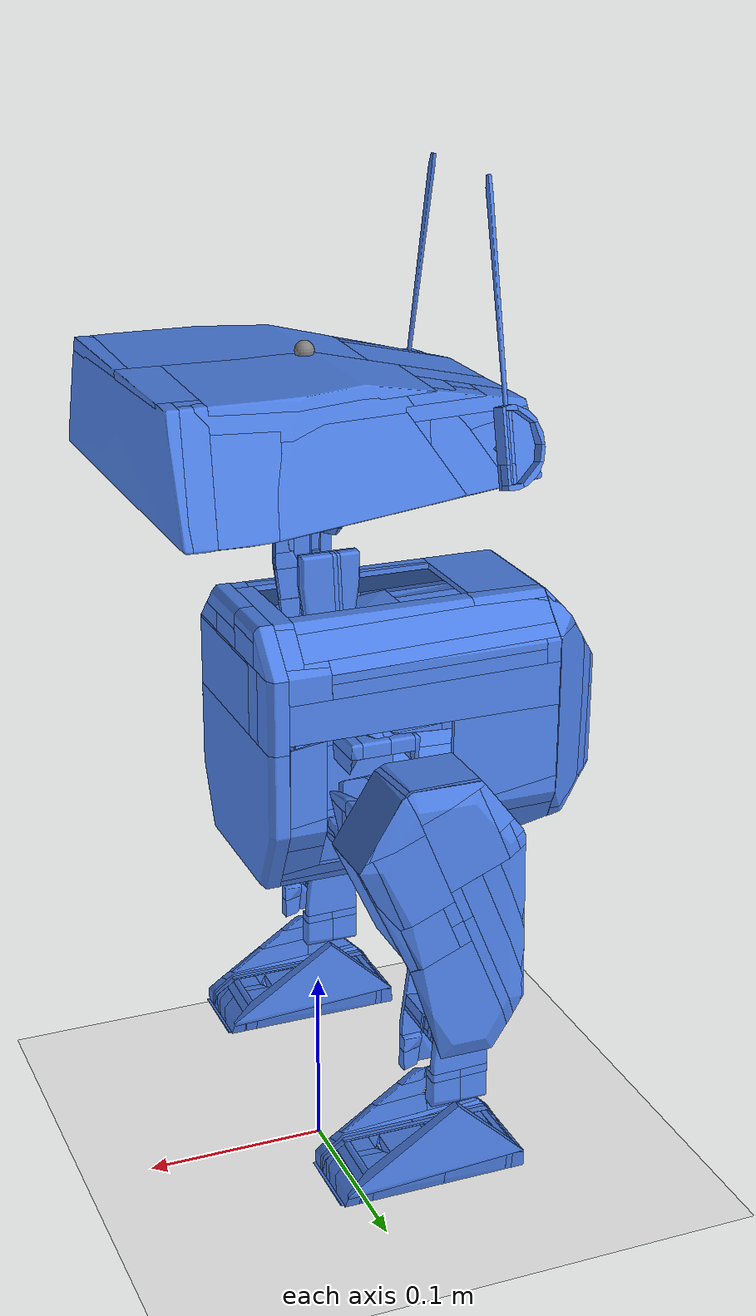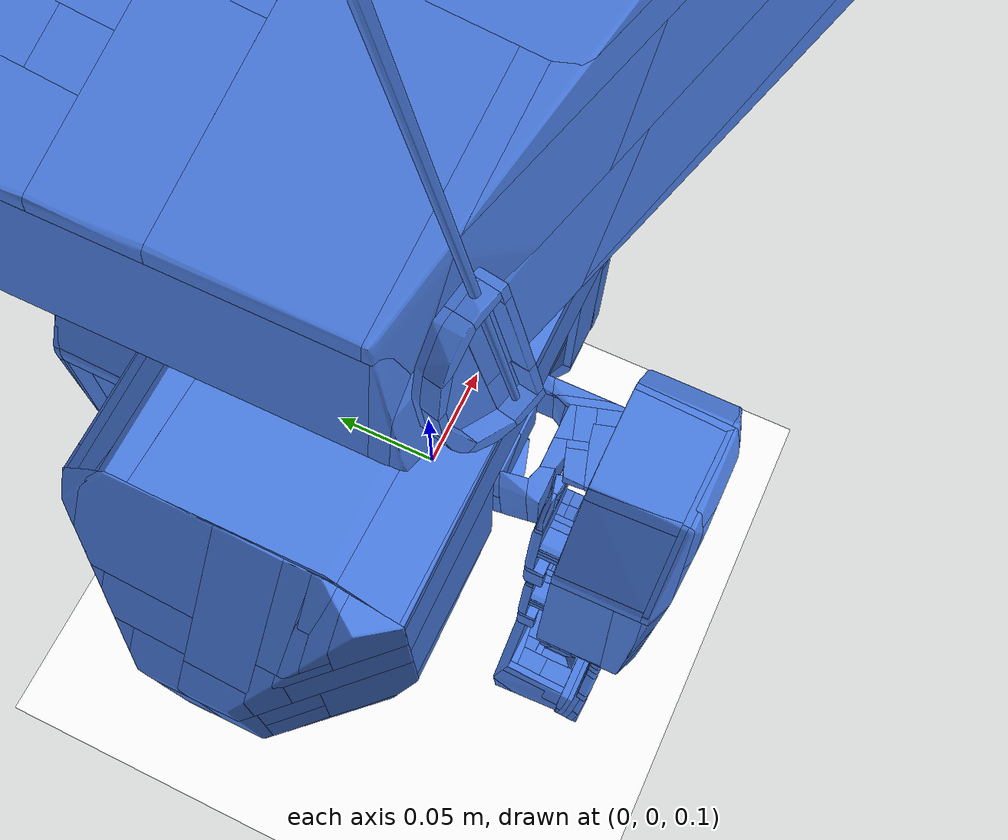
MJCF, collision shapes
<?xml version='1.0' encoding='utf-8'?>
<mujoco model="scene">
  <include file="/data/shijinsheng/open_duck/training/getup_decomposed_r4/model/robot_decomposed.xml" />
  <visual>
    <headlight diffuse="0.6 0.6 0.6" ambient="0.3 0.3 0.3" specular="0 0 0" />
    <rgba haze="0.15 0.25 0.35 1" />
    <global azimuth="160" elevation="-20" />
  </visual>
  <asset>
    <texture type="skybox" builtin="gradient" rgb1="1 1 1" rgb2="1 1 1" width="800" height="800" />
    <texture type="2d" name="groundplane" builtin="checker" mark="edge" rgb1="1 1 1" rgb2="1 1 1" markrgb="0 0 0" width="300" height="300" />
    <material name="groundplane" texture="groundplane" texuniform="true" texrepeat="5 5" reflectance="0" />
  </asset>
  <worldbody>
    <body name="floor">
      <geom name="floor" size="0 0 0.01" type="plane" material="groundplane" contype="1" conaffinity="0" priority="1" friction="0.6" condim="3" />
    </body>
  </worldbody>
  <keyframe>
    <key name="home" qpos="     0 0 0.15     1 0 0 0       0.002         0.053         -0.63         1.368         -0.784         0         0         0         0         -0.003         -0.065         0.635         1.379         -0.796 " ctrl="           0.002         0.053         -0.63         1.368         -0.784         0         0         0         0         -0.003         -0.065         0.635         1.379         -0.796           " />
  </keyframe>
</mujoco>
